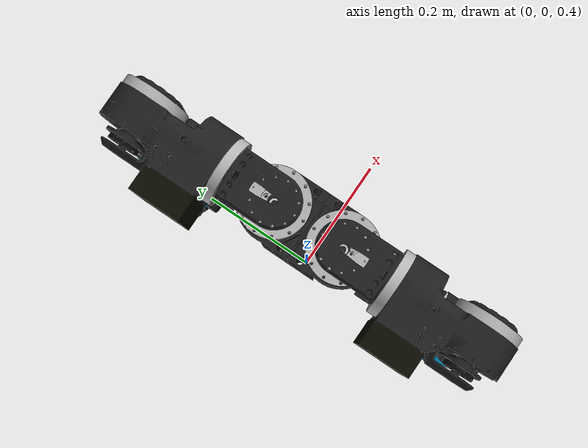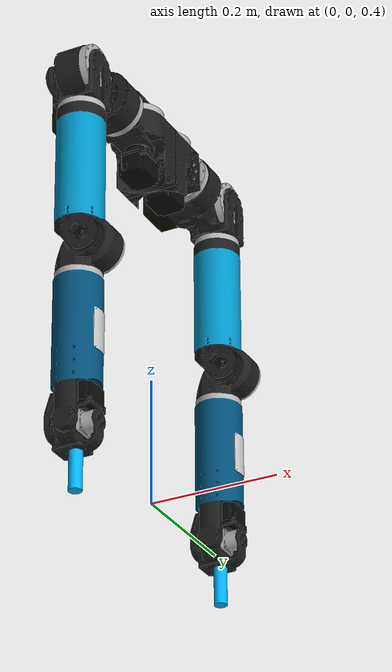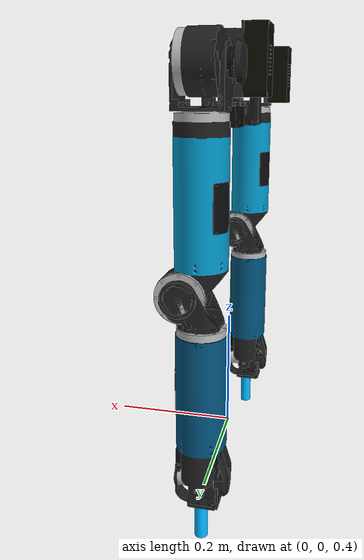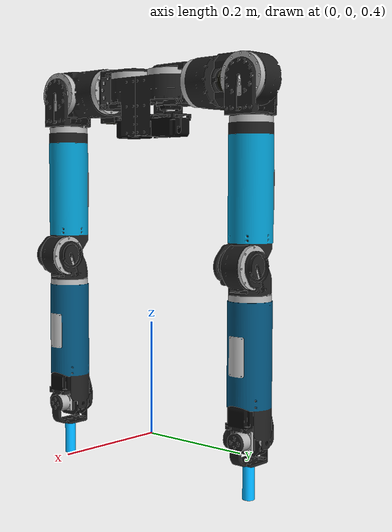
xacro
<?xml version="1.0"?>
<robot xmlns:xacro="http://ros.org/wiki/xacro" name="safe_arm">
	<!--
    	This file loads a basic visualization of safe_arm and the structure (you need both)
   	-->
	<xacro:include filename="$(find safe_arm_description)/urdf/visuals.xacro" />
	<xacro:include filename="$(find safe_arm_description)/urdf/safe_arm_v1.limits.xacro" />
	<xacro:include filename="$(find safe_arm_description)/urdf/safe_arm_v1.structure.xacro" />
	<xacro:include filename="$(find safe_arm_description)/urdf/safe_arm_v1.transmission.xacro" />
	<xacro:include filename="$(find safe_arm_description)/urdf/safe_arm_v1.gazebo.xacro" />
	<xacro:include filename="$(find safe_arm_description)/urdf/safe_arm_v1.inertia.xacro" />

	<link name="world" />

	<joint name="world_base_footprint_joint" type="fixed">
    	<parent link="world"/>
    	<child link="base_footprint"/>
  	</joint>

	<link name="base_footprint" />
	<link name="base_link" />

	<joint name="base_footprint_link_joint" type="fixed">
    	<parent link="base_footprint"/>
    	<child link="base_link"/>
  	</joint>

	<link name="torso" />

	<joint name="base_link_torso_joint" type="fixed">
		<origin xyz="0 0 1.0" rpy="0 0 0" />
		<parent link="base_link" />
		<child link="torso" />
	</joint>

	<!-- Attatch Left and Right Safe Arm to Torso Link -->
	<xacro:safe_arm side="l" reflect="1" parent="torso" />
	<xacro:safe_arm side="r" reflect="-1" parent="torso" />

</robot>

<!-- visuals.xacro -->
<robot xmlns:xacro="http://ros.org/wiki/xacro">

	<xacro:macro name="insert_mesh_link1">
		<geometry>
			<mesh filename="package://safe_arm_meshes/meshes/link1.dae" scale="0.001 0.001 0.001"/>
		</geometry>
	</xacro:macro>

	<xacro:macro name="insert_mesh_link2">
		<geometry>
			<mesh filename="package://safe_arm_meshes/meshes/link2.dae" scale="0.001 0.001 0.001"/>
		</geometry>
	</xacro:macro>

	<xacro:macro name="insert_mesh_link3">
		<geometry>
			<mesh filename="package://safe_arm_meshes/meshes/link3.dae" scale="0.001 0.001 0.001"/>
		</geometry>
	</xacro:macro>

	<xacro:macro name="insert_mesh_link4">
		<geometry>
			<mesh filename="package://safe_arm_meshes/meshes/link4.dae" scale="0.001 0.001 0.001"/>
		</geometry>
	</xacro:macro>

	<xacro:macro name="insert_mesh_link5">
		<geometry>
			<mesh filename="package://safe_arm_meshes/meshes/link5.dae" scale="0.001 0.001 0.001"/>
		</geometry>
	</xacro:macro>

	<xacro:macro name="insert_mesh_link6">
		<geometry>
			<mesh filename="package://safe_arm_meshes/meshes/link6.dae" scale="0.001 0.001 0.001"/>
		</geometry>
	</xacro:macro>

	<xacro:macro name="insert_mesh_link7">
		<geometry>
			<mesh filename="package://safe_arm_meshes/meshes/link7.dae" scale="0.001 0.001 0.001"/>
		</geometry>
	</xacro:macro>

	<xacro:macro name="insert_mesh_link8">
		<geometry>
			<mesh filename="package://safe_arm_meshes/meshes/link8.dae" scale="0.001 0.001 0.001"/>
		</geometry>
	</xacro:macro>

	<xacro:macro name="insert_mesh_link9">
		<geometry>
			<mesh filename="package://safe_arm_meshes/meshes/link9.dae" scale="0.001 0.001 0.001"/>
		</geometry>
	</xacro:macro>

	<xacro:macro name="insert_mesh_link_end_effector">
		<geometry>
			<cylinder length="0.06" radius="0.01" />
		</geometry>
		<material name="SkyBlue">
			<color rgba="0.0 0.7 1.0 1.0" />
		</material>
	</xacro:macro>

</robot>

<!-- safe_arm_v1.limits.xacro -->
<robot xmlns:xacro="http://ros.org/wiki/xacro">

	<xacro:property name="s_y_j_lower" value="1.06"	/>
	<xacro:property name="s_y_j_upper" value="0.33"	/>

	<xacro:property name="s_p_j_lower" value="3.05"	/>
	<xacro:property name="s_p_j_upper" value="1.01"	/>

	<xacro:property name="s_r_j_lower" value="0.095" />
	<xacro:property name="s_r_j_upper" value="3.141592"	/>

	<xacro:property name="u_j_lower" value="2.3" />
	<xacro:property name="u_j_upper" value="0.9"	/>

	<xacro:property name="e_p_lower" value="2.74" />
	<xacro:property name="e_p_upper" value="0.12"	/>

	<xacro:property name="e_y_lower" value="1.76" />
	<xacro:property name="e_y_upper" value="1.76" />

	<xacro:property name="w_p_lower" value="0.86" />
	<xacro:property name="w_p_upper" value="0.4" />

	<xacro:property name="w_r_lower" value="0.7" />
	<xacro:property name="w_r_upper" value="0.55" />

</robot>

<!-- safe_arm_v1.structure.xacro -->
<robot xmlns:xacro="http://ros.org/wiki/xacro">

	<xacro:property name="pi" value="3.141592654" />
	<xacro:macro name="safe_arm" params="side reflect parent">

		<link name="${side}_shoulder_base_link">
			<visual>
				<origin xyz="0 0 0" rpy="0 0 ${reflect*pi/2}" />
				<xacro:insert_mesh_link1 />
			</visual>
			<collision>
				<xacro:insert_mesh_link1 />
				<origin xyz="0 0 0" rpy="0 0 ${reflect*pi/2}" />
			</collision>
			<inertial>
				<origin xyz="${reflect*0.0000086} ${reflect*0.0361626} -0.0089504" rpy="0 0 ${reflect*pi/2}"/>
        		<xacro:insert_inertia_link1 />
    		</inertial>
		</link>

		<joint name="${side}_shoulder_base" type="fixed">
			<origin xyz="0 0 0" rpy="0 0 0" />
			<parent link="${parent}" />
			<child link="${side}_shoulder_base_link" />
		</joint>

		<link name="${side}_shoulder_yaw_link">
			<visual>
				<xacro:insert_mesh_link2 />
				<origin xyz="0 0 0" rpy="0 0 ${reflect*pi/2}" />
			</visual>
			<collision>
				<xacro:insert_mesh_link2 />
				<origin xyz="0 0 0" rpy="0 0 ${reflect*pi/2}" />
			</collision>
			<inertial>
				<origin xyz="${reflect*-0.0000110} ${reflect*0.0319139} -0.0031692" rpy="0 0 ${reflect*pi/2}" />
        		<xacro:insert_inertia_link2 />
    		</inertial>
		</link>

		<joint name="${side}_shoulder_yaw_joint" type="revolute">
			<axis xyz="0 0 1" />
			<origin xyz="0 ${reflect*0.044} 0.01" rpy="0 0 0" />
			<parent link="${side}_shoulder_base_link" />
			<child link="${side}_shoulder_yaw_link" />
			<limit velocity="2.0" effort="10000"
				lower="${((reflect * (-1 * s_y_j_lower + s_y_j_upper)) / 2) - ((s_y_j_lower + s_y_j_upper) / 2)}"
				upper="${((reflect * (-1 * s_y_j_lower + s_y_j_upper)) / 2) + ((s_y_j_lower + s_y_j_upper) / 2)}" />
			<dynamics damping="0.5" friction="0.0" />
		</joint>

		<xacro:insert_transmission name="${side}_shoulder_yaw_joint" />

		<link name="${side}_shoulder_pitch_link">
			<visual>
				<xacro:insert_mesh_link3 />
				<origin xyz="0 0 0" rpy="${-reflect*pi/2} 0 0" />
			</visual>
			<collision>
				<xacro:insert_mesh_link3 />
				<origin xyz="0 0 0" rpy="${-reflect*pi/2} 0 0" />
			</collision>
			<inertial>
				<origin xyz="-0.0147118 ${reflect*0.0640507} -0.0010824 " rpy="${-reflect*pi/2} 0 0 " />
        		<xacro:insert_inertia_link3 />
    		</inertial>
		</link>

		<joint name="${side}_shoulder_pitch_joint" type="revolute">
			<axis xyz="0 1 0" />
			<origin xyz="0 ${reflect*0.0555} 0" rpy="0 0 0" />
			<parent link="${side}_shoulder_yaw_link" />
			<child link="${side}_shoulder_pitch_link" />
			<limit velocity="2.0" effort="10000" lower="${-1 * s_p_j_lower}" upper="${s_p_j_upper}" />
			<dynamics damping="0.5" friction="0.0" />
		</joint>

		<xacro:insert_transmission name="${side}_shoulder_pitch_joint" />

		<link name="${side}_shoulder_roll_link">
			<visual>
				<xacro:insert_mesh_link4 />
				<origin xyz="0 0 0" rpy="0 0 ${pi/2}" />
			</visual>
			<collision>
				<xacro:insert_mesh_link4 />
				<origin xyz="0 0 0" rpy="0 0 ${pi/2}" />
			</collision>
			<inertial>
				<origin xyz="-0.0020936 0.0000194 -0.0306698" rpy="0 0 ${pi/2}" />
        		<xacro:insert_inertia_link4 />
    		</inertial>
		</link>

		<joint name="${side}_shoulder_roll_joint" type="revolute">
			<axis xyz="1 0 0" />
			<origin xyz="0 ${reflect*0.119} 0" rpy="0 0 0" />
			<parent link="${side}_shoulder_pitch_link" />
			<child link="${side}_shoulder_roll_link" />
			<limit velocity="2.0" effort="10000"
				lower="${((reflect * (-1 * s_r_j_lower + s_r_j_upper)) / 2) - ((s_r_j_lower + s_r_j_upper) / 2)}"
				upper="${((reflect * (-1 * s_r_j_lower + s_r_j_upper)) / 2) + ((s_r_j_lower + s_r_j_upper) / 2)}" />
			<dynamics damping="0.5" friction="0.0" />
		</joint>

		<xacro:insert_transmission name="${side}_shoulder_roll_joint" />

		<link name="${side}_underarm_link">
			<visual>
				<xacro:insert_mesh_link5 />
				<origin xyz="0 0 0" rpy="0 0 ${pi/2}" />
			</visual>
			<collision>
				<xacro:insert_mesh_link5 />
				<origin xyz="0 0 0" rpy="0 0 ${pi/2}" />
			</collision>
			<inertial>
				<origin xyz="0.0065368 0.0013104 -0.1269020" rpy="0 0 ${pi/2}" />
        		<xacro:insert_inertia_link5 />
    		</inertial>
		</link>

		<joint name="${side}_underarm_joint" type="revolute">
			<axis xyz="0 0 1" />
			<origin xyz="0 0 -0.058" rpy="0 0 0" />
			<parent link="${side}_shoulder_roll_link" />
			<child link="${side}_underarm_link" />
			<limit velocity="2.0" effort="10000"
				lower="${((reflect * (-1 * u_j_lower + u_j_upper)) / 2) - ((u_j_lower + u_j_upper) / 2)}"
				upper="${((reflect * (-1 * u_j_lower + u_j_upper)) / 2) + ((u_j_lower + u_j_upper) / 2)}" />
			<dynamics damping="0.5" friction="0.0" />
		</joint>

		<xacro:insert_transmission name="${side}_underarm_joint" />

		<link name="${side}_elbow_pitch_link">
			<visual>
				<xacro:insert_mesh_link6 />
				<origin xyz="0 0 0" rpy="0 0 ${pi/2}" />
			</visual>
			<collision>
				<xacro:insert_mesh_link6 />
				<origin xyz="0 0 0" rpy="0 0 ${pi/2}" />
			</collision>
			<inertial>
				<origin xyz="-0.0150389 -0.0005238 -0.0240661" rpy="0 0 ${pi/2}" />
        		<xacro:insert_inertia_link6 />
    		</inertial>
		</link>

		<joint name="${side}_elbow_pitch_joint" type="revolute">
			<axis xyz="0 1 0" />
			<origin xyz="0.025 0 -0.240" rpy="0 0 0" />
			<parent link="${side}_underarm_link" />
			<child link="${side}_elbow_pitch_link" />
			<limit velocity="2.0" effort="10000" lower="${-1 * e_p_lower}" upper="${e_p_upper}" />
			<dynamics damping="0.5" friction="0.0" />
		</joint>

		<xacro:insert_transmission name="${side}_elbow_pitch_joint" />

		<link name="${side}_elbow_yaw_link">
			<visual>
				<xacro:insert_mesh_link7 />
				<origin xyz="0 0 0" rpy="0 0 ${pi/2}" />
			</visual>
			<collision>
				<xacro:insert_mesh_link7 />
				<origin xyz="0 0 0" rpy="0 0 ${pi/2}" />
			</collision>
			<inertial>
				<origin xyz="0.0004414 -0.0019565 -0.0821393" rpy="0 0 ${pi/2}" />
        		<xacro:insert_inertia_link7 />
    		</inertial>
		</link>

		<joint name="${side}_elbow_yaw_joint" type="revolute">
			<axis xyz="0 0 1" />
			<origin xyz="-0.025 0 -0.045" rpy="0 0 0" />
			<parent link="${side}_elbow_pitch_link" />
			<child link="${side}_elbow_yaw_link" />
			<limit velocity="2.0" effort="10000" lower="${-1 * e_y_lower}" upper="${e_y_lower}" />
			<dynamics damping="0.5" friction="0.0" />
		</joint>

		<xacro:insert_transmission name="${side}_elbow_yaw_joint" />

		<link name="${side}_wrist_pitch_link">
			<visual>
				<xacro:insert_mesh_link8 />
				<origin xyz="0 0 0" rpy="0 0 ${pi/2}" />
			</visual>
			<collision>
				<xacro:insert_mesh_link8 />
				<origin xyz="0 0 0" rpy="0 0 ${pi/2}" />
			</collision>
			<inertial>
				<origin xyz="0.0004301 -0.0001058 0.0160042" rpy="0 0 ${pi/2}" />
        		<xacro:insert_inertia_link8 />
    		</inertial>
		</link>

		<joint name="${side}_wrist_pitch_joint" type="revolute">
			<axis xyz="0 1 0" />
			<origin xyz="0 0 -0.240" rpy="0 0 0" />
			<parent link="${side}_elbow_yaw_link" />
			<child link="${side}_wrist_pitch_link" />
			<limit velocity="2.0" effort="10000" lower="${-1 * w_p_lower}" upper="${w_p_upper}" />
			<dynamics damping="0.5" friction="0.0" />
		</joint>

		<xacro:insert_transmission name="${side}_wrist_pitch_joint" />

		<link name="${side}_wrist_roll_link">
			<visual>
				<xacro:insert_mesh_link9 />
				<origin xyz="0 0 0" rpy="0 0 ${pi/2}" />
			</visual>
			<collision>
				<xacro:insert_mesh_link9 />
				<origin xyz="0 0 0" rpy="0 0 ${pi/2}" />
			</collision>
			<inertial>
				<origin xyz="0.0004301 -0.0001058 0.0160042" rpy="0 0 ${pi/2}" />
        		<xacro:insert_inertia_link9 />
    		</inertial>
		</link>

		<joint name="${side}_wrist_roll_joint" type="revolute">
			<axis xyz="1 0 0" />
			<origin xyz="0 0 0" rpy="0 0 0" />
			<parent link="${side}_wrist_pitch_link" />
			<child link="${side}_wrist_roll_link" />
			<limit velocity="2.0" effort="10000"
				lower="${((reflect * (-1 * w_r_lower + w_r_upper)) / 2) - ((w_r_lower + w_r_upper) / 2)}"
				upper="${((reflect * (-1 * w_r_lower + w_r_upper)) / 2) + ((w_r_lower + w_r_upper) / 2)}" />
			<dynamics damping="0.5" friction="0.0" />
		</joint>

		<xacro:insert_transmission name="${side}_wrist_roll_joint" />

		<link name="${side}_end_effector_link">
			<visual>
				<xacro:insert_mesh_link_end_effector />
				<origin xyz="0 0 0.03" rpy="0 0 0" />
			</visual>
			<collision>
				<xacro:insert_mesh_link_end_effector />
				<origin xyz="0 0 0.03" rpy="0 0 0" />
			</collision>
			<inertial>
				<origin xyz="0 0 0.015" rpy="0 0 0" />
        		<xacro:insert_inertia_link_end_effector />
    		</inertial>
		</link>

		<joint name="${side}_end_effector_joint" type="fixed">
			<origin xyz="0 0 -0.10" rpy="0 0 0" />
			<parent link="${side}_wrist_roll_link" />
			<child link="${side}_end_effector_link" />
		</joint>

	</xacro:macro>
</robot>

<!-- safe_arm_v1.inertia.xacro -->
<robot xmlns:xacro="http://ros.org/wiki/xacro">

	<xacro:macro name="insert_inertia_link1">
        <mass value="1.188461" />
        <inertia ixx="1.0" ixy="0.0" ixz="0.0" iyy="1.0" iyz="0.0" izz="1.0" />
	</xacro:macro>

	<xacro:macro name="insert_inertia_link2">
        <mass value="0.158676" />
        <inertia ixx="0.0001655" ixy="0.0000001" ixz="-0.0000022" iyy="0.0002387" iyz="0.0000000" izz="0.0001580" />
	</xacro:macro>

	<xacro:macro name="insert_inertia_link3">
        <mass value="2.407169" />
        <inertia ixx="0.0060299" ixy="-0.0001094" ixz="-0.0008418" iyy="0.0065008" iyz="-0.0000735" izz="0.0036095" />
	</xacro:macro>

	<xacro:macro name="insert_inertia_link4">
        <mass value="0.154973" />
        <inertia ixx="0.0002334" ixy="-0.0000001" ixz="-0.0000001" iyy="0.0001478" iyz="0.0000001" izz="0.0001603" />
	</xacro:macro>

	<xacro:macro name="insert_inertia_link5">
        <mass value="1.942905" />
        <inertia ixx="0.0192512" ixy="0.0000665" ixz="0.0002923" iyy="0.0189994" iyz="0.0000665" izz="0.0018648" />
	</xacro:macro>

	<xacro:macro name="insert_inertia_link6">
        <mass value="0.169873" />
        <inertia ixx="0.0001459" ixy="0.0000045" ixz="-0.0000102" iyy="0.0001907" iyz="0.0000359" izz="0.0001571" />
	</xacro:macro>

	<xacro:macro name="insert_inertia_link7">
        <mass value="1.498110" />
        <inertia ixx="0.0093184" ixy="0.0000022" ixz="-0.0003994" iyy="0.0094939" iyz="-0.0000130" izz="0.0015010" />
	</xacro:macro>

	<xacro:macro name="insert_inertia_link8">
        <mass value="0.419231" />
        <inertia ixx="0.0003157" ixy="-0.0000006" ixz="0.0000007" iyy="0.0002646" iyz="0.0000270" izz="0.0002086" />
	</xacro:macro>

	<xacro:macro name="insert_inertia_link9">
        <mass value="0.329326" />
        <inertia ixx="0.0000001" ixy="0.0" ixz="0.0" iyy="0.0000001" iyz="0.0" izz="0.0000001" />
	</xacro:macro>

	<xacro:macro name="insert_inertia_link_end_effector">
        <mass value="1.0" />
        <inertia ixx="0.0000001" ixy="0.0" ixz="0.0" iyy="0.0000001" iyz="0.0" izz="0.0000001" />
	</xacro:macro>

</robot>
